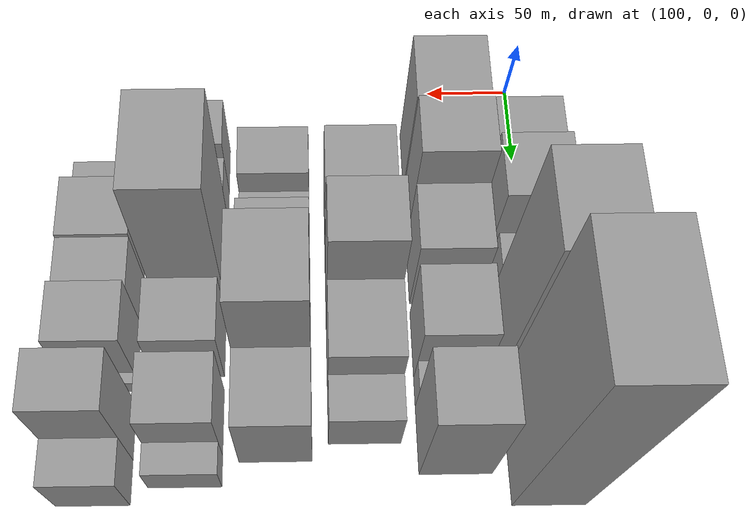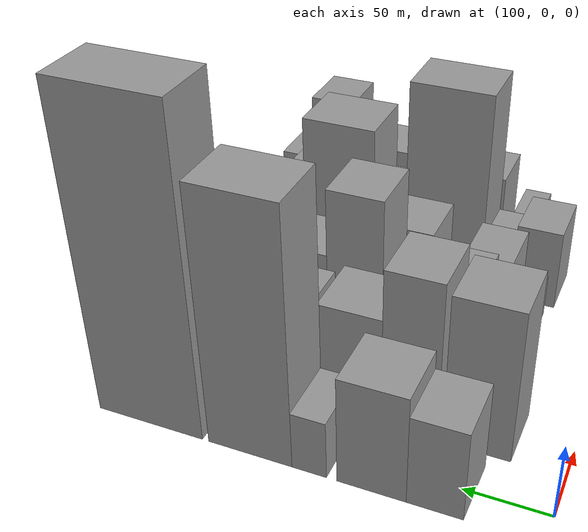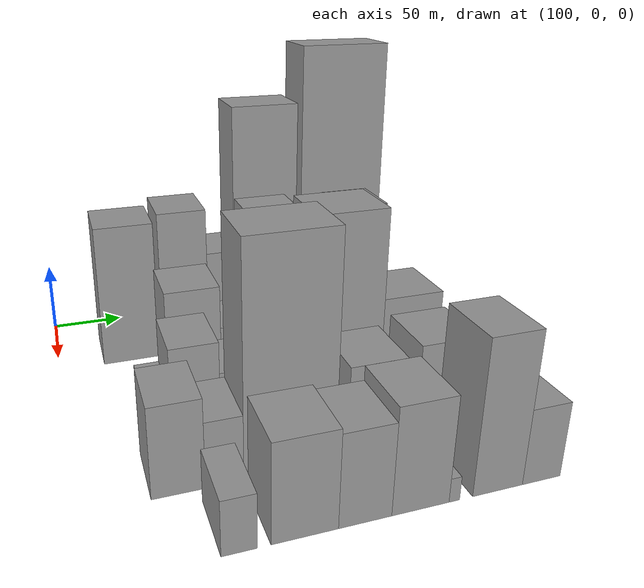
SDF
<sdf version="1.6">
 <world name="default">
  <model name="building_22">
   <static>1</static>
   <pose>100.0000 58.4036 0 0.000000 0.000000 0.000000</pose>
   <link name="link">
    <pose>0 0 30.00 0 0 0</pose>
    <collision name="collision"><geometry><box><size>40.0000 31.4197 60.0000</size></box></geometry></collision>
    <visual name="visual">
     <cast_shadows>0</cast_shadows>
     <geometry><box><size>40.0000 31.4197 60.0000</size></box></geometry>
     <material>
      <script>
       <uri>model://grey_wall/materials/scripts</uri>
       <uri>model://grey_wall/materials/textures</uri>
       <name>vrc/grey_wall</name>
      </script>
     </material>
    </visual>
   </link>
  </model>
  <model name="building_23">
   <static>1</static>
   <pose>100.0000 93.8750 0 0.000000 0.000000 0.000000</pose>
   <link name="link">
    <pose>0 0 36.00 0 0 0</pose>
    <collision name="collision"><geometry><box><size>40.0000 39.5232 72.0000</size></box></geometry></collision>
    <visual name="visual">
     <cast_shadows>0</cast_shadows>
     <geometry><box><size>40.0000 39.5232 72.0000</size></box></geometry>
     <material>
      <script>
       <uri>model://grey_wall/materials/scripts</uri>
       <uri>model://grey_wall/materials/textures</uri>
       <name>vrc/grey_wall</name>
      </script>
     </material>
    </visual>
   </link>
  </model>
  <model name="building_24">
   <static>1</static>
   <pose>100.0000 129.8729 0 0.000000 0.000000 0.000000</pose>
   <link name="link">
    <pose>0 0 19.50 0 0 0</pose>
    <collision name="collision"><geometry><box><size>40.0000 20.4726 39.0000</size></box></geometry></collision>
    <visual name="visual">
     <cast_shadows>0</cast_shadows>
     <geometry><box><size>40.0000 20.4726 39.0000</size></box></geometry>
     <material>
      <script>
       <uri>model://grey_wall/materials/scripts</uri>
       <uri>model://grey_wall/materials/textures</uri>
       <name>vrc/grey_wall</name>
      </script>
     </material>
    </visual>
   </link>
  </model>
  <model name="building_25">
   <static>1</static>
   <pose>100.0000 165.9159 0 0.000000 0.000000 0.000000</pose>
   <link name="link">
    <pose>0 0 84.00 0 0 0</pose>
    <collision name="collision"><geometry><box><size>40.0000 51.6133 168.0000</size></box></geometry></collision>
    <visual name="visual">
     <cast_shadows>0</cast_shadows>
     <geometry><box><size>40.0000 51.6133 168.0000</size></box></geometry>
     <material>
      <script>
       <uri>model://grey_wall/materials/scripts</uri>
       <uri>model://grey_wall/materials/textures</uri>
       <name>vrc/grey_wall</name>
      </script>
     </material>
    </visual>
   </link>
  </model>
  <model name="building_26">
   <static>1</static>
   <pose>100.0000 229.7220 0 0.000000 0.000000 0.000000</pose>
   <link name="link">
    <pose>0 0 105.00 0 0 0</pose>
    <collision name="collision"><geometry><box><size>40.0000 67.9990 210.0000</size></box></geometry></collision>
    <visual name="visual">
     <cast_shadows>0</cast_shadows>
     <geometry><box><size>40.0000 67.9990 210.0000</size></box></geometry>
     <material>
      <script>
       <uri>model://grey_wall/materials/scripts</uri>
       <uri>model://grey_wall/materials/textures</uri>
       <name>vrc/grey_wall</name>
      </script>
     </material>
    </visual>
   </link>
  </model>
  <model name="building_67">
   <static>1</static>
   <pose>149.0000 50.6303 0 0.000000 0.000000 0.000000</pose>
   <link name="link">
    <pose>0 0 51.00 0 0 0</pose>
    <collision name="collision"><geometry><box><size>40.0000 39.5652 102.0000</size></box></geometry></collision>
    <visual name="visual">
     <cast_shadows>0</cast_shadows>
     <geometry><box><size>40.0000 39.5652 102.0000</size></box></geometry>
     <material>
      <script>
       <uri>model://grey_wall/materials/scripts</uri>
       <uri>model://grey_wall/materials/textures</uri>
       <name>vrc/grey_wall</name>
      </script>
     </material>
    </visual>
   </link>
  </model>
  <model name="building_68">
   <static>1</static>
   <pose>149.0000 90.3499 0 0.000000 0.000000 0.000000</pose>
   <link name="link">
    <pose>0 0 54.00 0 0 0</pose>
    <collision name="collision"><geometry><box><size>40.0000 33.8740 108.0000</size></box></geometry></collision>
    <visual name="visual">
     <cast_shadows>0</cast_shadows>
     <geometry><box><size>40.0000 33.8740 108.0000</size></box></geometry>
     <material>
      <script>
       <uri>model://grey_wall/materials/scripts</uri>
       <uri>model://grey_wall/materials/textures</uri>
       <name>vrc/grey_wall</name>
      </script>
     </material>
    </visual>
   </link>
  </model>
  <model name="building_69">
   <static>1</static>
   <pose>149.0000 126.5939 0 0.000000 0.000000 0.000000</pose>
   <link name="link">
    <pose>0 0 37.50 0 0 0</pose>
    <collision name="collision"><geometry><box><size>40.0000 38.6140 75.0000</size></box></geometry></collision>
    <visual name="visual">
     <cast_shadows>0</cast_shadows>
     <geometry><box><size>40.0000 38.6140 75.0000</size></box></geometry>
     <material>
      <script>
       <uri>model://grey_wall/materials/scripts</uri>
       <uri>model://grey_wall/materials/textures</uri>
       <name>vrc/grey_wall</name>
      </script>
     </material>
    </visual>
   </link>
  </model>
  <model name="building_70">
   <static>1</static>
   <pose>149.0000 171.7424 0 0.000000 0.000000 0.000000</pose>
   <link name="link">
    <pose>0 0 34.50 0 0 0</pose>
    <collision name="collision"><geometry><box><size>40.0000 39.6831 69.0000</size></box></geometry></collision>
    <visual name="visual">
     <cast_shadows>0</cast_shadows>
     <geometry><box><size>40.0000 39.6831 69.0000</size></box></geometry>
     <material>
      <script>
       <uri>model://grey_wall/materials/scripts</uri>
       <uri>model://grey_wall/materials/textures</uri>
       <name>vrc/grey_wall</name>
      </script>
     </material>
    </visual>
   </link>
  </model>
  <model name="building_71">
   <static>1</static>
   <pose>149.0000 200.0112 0 0.000000 0.000000 0.000000</pose>
   <link name="link">
    <pose>0 0 15.00 0 0 0</pose>
    <collision name="collision"><geometry><box><size>40.0000 16.8546 30.0000</size></box></geometry></collision>
    <visual name="visual">
     <cast_shadows>0</cast_shadows>
     <geometry><box><size>40.0000 16.8546 30.0000</size></box></geometry>
     <material>
      <script>
       <uri>model://grey_wall/materials/scripts</uri>
       <uri>model://grey_wall/materials/textures</uri>
       <name>vrc/grey_wall</name>
      </script>
     </material>
    </visual>
   </link>
  </model>
  <model name="building_72">
   <static>1</static>
   <pose>149.0000 227.3875 0 0.000000 0.000000 0.000000</pose>
   <link name="link">
    <pose>0 0 49.50 0 0 0</pose>
    <collision name="collision"><geometry><box><size>40.0000 37.8979 99.0000</size></box></geometry></collision>
    <visual name="visual">
     <cast_shadows>0</cast_shadows>
     <geometry><box><size>40.0000 37.8979 99.0000</size></box></geometry>
     <material>
      <script>
       <uri>model://grey_wall/materials/scripts</uri>
       <uri>model://grey_wall/materials/textures</uri>
       <name>vrc/grey_wall</name>
      </script>
     </material>
    </visual>
   </link>
  </model>
  <model name="building_110">
   <static>1</static>
   <pose>198.0000 86.2267 0 0.000000 0.000000 0.000000</pose>
   <link name="link">
    <pose>0 0 36.00 0 0 0</pose>
    <collision name="collision"><geometry><box><size>40.0000 36.2347 72.0000</size></box></geometry></collision>
    <visual name="visual">
     <cast_shadows>0</cast_shadows>
     <geometry><box><size>40.0000 36.2347 72.0000</size></box></geometry>
     <material>
      <script>
       <uri>model://grey_wall/materials/scripts</uri>
       <uri>model://grey_wall/materials/textures</uri>
       <name>vrc/grey_wall</name>
      </script>
     </material>
    </visual>
   </link>
  </model>
  <model name="building_111">
   <static>1</static>
   <pose>198.0000 115.0011 0 0.000000 0.000000 0.000000</pose>
   <link name="link">
    <pose>0 0 21.00 0 0 0</pose>
    <collision name="collision"><geometry><box><size>40.0000 21.3140 42.0000</size></box></geometry></collision>
    <visual name="visual">
     <cast_shadows>0</cast_shadows>
     <geometry><box><size>40.0000 21.3140 42.0000</size></box></geometry>
     <material>
      <script>
       <uri>model://grey_wall/materials/scripts</uri>
       <uri>model://grey_wall/materials/textures</uri>
       <name>vrc/grey_wall</name>
      </script>
     </material>
    </visual>
   </link>
  </model>
  <model name="building_112">
   <static>1</static>
   <pose>198.0000 143.4820 0 0.000000 0.000000 0.000000</pose>
   <link name="link">
    <pose>0 0 58.50 0 0 0</pose>
    <collision name="collision"><geometry><box><size>40.0000 35.6478 117.0000</size></box></geometry></collision>
    <visual name="visual">
     <cast_shadows>0</cast_shadows>
     <geometry><box><size>40.0000 35.6478 117.0000</size></box></geometry>
     <material>
      <script>
       <uri>model://grey_wall/materials/scripts</uri>
       <uri>model://grey_wall/materials/textures</uri>
       <name>vrc/grey_wall</name>
      </script>
     </material>
    </visual>
   </link>
  </model>
  <model name="building_113">
   <static>1</static>
   <pose>198.0000 182.4246 0 0.000000 0.000000 0.000000</pose>
   <link name="link">
    <pose>0 0 36.00 0 0 0</pose>
    <collision name="collision"><geometry><box><size>40.0000 42.2373 72.0000</size></box></geometry></collision>
    <visual name="visual">
     <cast_shadows>0</cast_shadows>
     <geometry><box><size>40.0000 42.2373 72.0000</size></box></geometry>
     <material>
      <script>
       <uri>model://grey_wall/materials/scripts</uri>
       <uri>model://grey_wall/materials/textures</uri>
       <name>vrc/grey_wall</name>
      </script>
     </material>
    </visual>
   </link>
  </model>
  <model name="building_114">
   <static>1</static>
   <pose>198.0000 216.1688 0 0.000000 0.000000 0.000000</pose>
   <link name="link">
    <pose>0 0 22.50 0 0 0</pose>
    <collision name="collision"><geometry><box><size>40.0000 25.2511 45.0000</size></box></geometry></collision>
    <visual name="visual">
     <cast_shadows>0</cast_shadows>
     <geometry><box><size>40.0000 25.2511 45.0000</size></box></geometry>
     <material>
      <script>
       <uri>model://grey_wall/materials/scripts</uri>
       <uri>model://grey_wall/materials/textures</uri>
       <name>vrc/grey_wall</name>
      </script>
     </material>
    </visual>
   </link>
  </model>
  <model name="building_156">
   <static>1</static>
   <pose>247.0000 53.3687 0 0.000000 0.000000 0.000000</pose>
   <link name="link">
    <pose>0 0 15.00 0 0 0</pose>
    <collision name="collision"><geometry><box><size>40.0000 15.6656 30.0000</size></box></geometry></collision>
    <visual name="visual">
     <cast_shadows>0</cast_shadows>
     <geometry><box><size>40.0000 15.6656 30.0000</size></box></geometry>
     <material>
      <script>
       <uri>model://grey_wall/materials/scripts</uri>
       <uri>model://grey_wall/materials/textures</uri>
       <name>vrc/grey_wall</name>
      </script>
     </material>
    </visual>
   </link>
  </model>
  <model name="building_157">
   <static>1</static>
   <pose>247.0000 76.2522 0 0.000000 0.000000 0.000000</pose>
   <link name="link">
    <pose>0 0 30.00 0 0 0</pose>
    <collision name="collision"><geometry><box><size>40.0000 30.1015 60.0000</size></box></geometry></collision>
    <visual name="visual">
     <cast_shadows>0</cast_shadows>
     <geometry><box><size>40.0000 30.1015 60.0000</size></box></geometry>
     <material>
      <script>
       <uri>model://grey_wall/materials/scripts</uri>
       <uri>model://grey_wall/materials/textures</uri>
       <name>vrc/grey_wall</name>
      </script>
     </material>
    </visual>
   </link>
  </model>
  <model name="building_158">
   <static>1</static>
   <pose>247.0000 101.3006 0 0.000000 0.000000 0.000000</pose>
   <link name="link">
    <pose>0 0 19.50 0 0 0</pose>
    <collision name="collision"><geometry><box><size>40.0000 19.9952 39.0000</size></box></geometry></collision>
    <visual name="visual">
     <cast_shadows>0</cast_shadows>
     <geometry><box><size>40.0000 19.9952 39.0000</size></box></geometry>
     <material>
      <script>
       <uri>model://grey_wall/materials/scripts</uri>
       <uri>model://grey_wall/materials/textures</uri>
       <name>vrc/grey_wall</name>
      </script>
     </material>
    </visual>
   </link>
  </model>
  <model name="building_159">
   <static>1</static>
   <pose>247.0000 131.0246 0 0.000000 0.000000 0.000000</pose>
   <link name="link">
    <pose>0 0 34.50 0 0 0</pose>
    <collision name="collision"><geometry><box><size>40.0000 39.4528 69.0000</size></box></geometry></collision>
    <visual name="visual">
     <cast_shadows>0</cast_shadows>
     <geometry><box><size>40.0000 39.4528 69.0000</size></box></geometry>
     <material>
      <script>
       <uri>model://grey_wall/materials/scripts</uri>
       <uri>model://grey_wall/materials/textures</uri>
       <name>vrc/grey_wall</name>
      </script>
     </material>
    </visual>
   </link>
  </model>
  <model name="building_160">
   <static>1</static>
   <pose>247.0000 174.2249 0 0.000000 0.000000 0.000000</pose>
   <link name="link">
    <pose>0 0 66.00 0 0 0</pose>
    <collision name="collision"><geometry><box><size>40.0000 46.9478 132.0000</size></box></geometry></collision>
    <visual name="visual">
     <cast_shadows>0</cast_shadows>
     <geometry><box><size>40.0000 46.9478 132.0000</size></box></geometry>
     <material>
      <script>
       <uri>model://grey_wall/materials/scripts</uri>
       <uri>model://grey_wall/materials/textures</uri>
       <name>vrc/grey_wall</name>
      </script>
     </material>
    </visual>
   </link>
  </model>
  <model name="building_161">
   <static>1</static>
   <pose>247.0000 217.9643 0 0.000000 0.000000 0.000000</pose>
   <link name="link">
    <pose>0 0 36.00 0 0 0</pose>
    <collision name="collision"><geometry><box><size>40.0000 40.5310 72.0000</size></box></geometry></collision>
    <visual name="visual">
     <cast_shadows>0</cast_shadows>
     <geometry><box><size>40.0000 40.5310 72.0000</size></box></geometry>
     <material>
      <script>
       <uri>model://grey_wall/materials/scripts</uri>
       <uri>model://grey_wall/materials/textures</uri>
       <name>vrc/grey_wall</name>
      </script>
     </material>
    </visual>
   </link>
  </model>
  <model name="building_205">
   <static>1</static>
   <pose>296.0000 55.5657 0 0.000000 0.000000 0.000000</pose>
   <link name="link">
    <pose>0 0 28.50 0 0 0</pose>
    <collision name="collision"><geometry><box><size>40.0000 29.5504 57.0000</size></box></geometry></collision>
    <visual name="visual">
     <cast_shadows>0</cast_shadows>
     <geometry><box><size>40.0000 29.5504 57.0000</size></box></geometry>
     <material>
      <script>
       <uri>model://grey_wall/materials/scripts</uri>
       <uri>model://grey_wall/materials/textures</uri>
       <name>vrc/grey_wall</name>
      </script>
     </material>
    </visual>
   </link>
  </model>
  <model name="building_206">
   <static>1</static>
   <pose>296.0000 81.1973 0 0.000000 0.000000 0.000000</pose>
   <link name="link">
    <pose>0 0 21.00 0 0 0</pose>
    <collision name="collision"><geometry><box><size>40.0000 21.7128 42.0000</size></box></geometry></collision>
    <visual name="visual">
     <cast_shadows>0</cast_shadows>
     <geometry><box><size>40.0000 21.7128 42.0000</size></box></geometry>
     <material>
      <script>
       <uri>model://grey_wall/materials/scripts</uri>
       <uri>model://grey_wall/materials/textures</uri>
       <name>vrc/grey_wall</name>
      </script>
     </material>
    </visual>
   </link>
  </model>
  <model name="building_207">
   <static>1</static>
   <pose>296.0000 119.3716 0 0.000000 0.000000 0.000000</pose>
   <link name="link">
    <pose>0 0 72.00 0 0 0</pose>
    <collision name="collision"><geometry><box><size>40.0000 54.6359 144.0000</size></box></geometry></collision>
    <visual name="visual">
     <cast_shadows>0</cast_shadows>
     <geometry><box><size>40.0000 54.6359 144.0000</size></box></geometry>
     <material>
      <script>
       <uri>model://grey_wall/materials/scripts</uri>
       <uri>model://grey_wall/materials/textures</uri>
       <name>vrc/grey_wall</name>
      </script>
     </material>
    </visual>
   </link>
  </model>
  <model name="building_208">
   <static>1</static>
   <pose>296.0000 171.4354 0 0.000000 0.000000 0.000000</pose>
   <link name="link">
    <pose>0 0 30.00 0 0 0</pose>
    <collision name="collision"><geometry><box><size>40.0000 35.4918 60.0000</size></box></geometry></collision>
    <visual name="visual">
     <cast_shadows>0</cast_shadows>
     <geometry><box><size>40.0000 35.4918 60.0000</size></box></geometry>
     <material>
      <script>
       <uri>model://grey_wall/materials/scripts</uri>
       <uri>model://grey_wall/materials/textures</uri>
       <name>vrc/grey_wall</name>
      </script>
     </material>
    </visual>
   </link>
  </model>
  <model name="building_209">
   <static>1</static>
   <pose>296.0000 215.7584 0 0.000000 0.000000 0.000000</pose>
   <link name="link">
    <pose>0 0 33.00 0 0 0</pose>
    <collision name="collision"><geometry><box><size>40.0000 37.1543 66.0000</size></box></geometry></collision>
    <visual name="visual">
     <cast_shadows>0</cast_shadows>
     <geometry><box><size>40.0000 37.1543 66.0000</size></box></geometry>
     <material>
      <script>
       <uri>model://grey_wall/materials/scripts</uri>
       <uri>model://grey_wall/materials/textures</uri>
       <name>vrc/grey_wall</name>
      </script>
     </material>
    </visual>
   </link>
  </model>
  <model name="building_210">
   <static>1</static>
   <pose>296.0000 242.9246 0 0.000000 0.000000 0.000000</pose>
   <link name="link">
    <pose>0 0 15.00 0 0 0</pose>
    <collision name="collision"><geometry><box><size>40.0000 17.1780 30.0000</size></box></geometry></collision>
    <visual name="visual">
     <cast_shadows>0</cast_shadows>
     <geometry><box><size>40.0000 17.1780 30.0000</size></box></geometry>
     <material>
      <script>
       <uri>model://grey_wall/materials/scripts</uri>
       <uri>model://grey_wall/materials/textures</uri>
       <name>vrc/grey_wall</name>
      </script>
     </material>
    </visual>
   </link>
  </model>
  <model name="building_258">
   <static>1</static>
   <pose>345.0000 75.7708 0 0.000000 0.000000 0.000000</pose>
   <link name="link">
    <pose>0 0 16.50 0 0 0</pose>
    <collision name="collision"><geometry><box><size>40.0000 18.2970 33.0000</size></box></geometry></collision>
    <visual name="visual">
     <cast_shadows>0</cast_shadows>
     <geometry><box><size>40.0000 18.2970 33.0000</size></box></geometry>
     <material>
      <script>
       <uri>model://grey_wall/materials/scripts</uri>
       <uri>model://grey_wall/materials/textures</uri>
       <name>vrc/grey_wall</name>
      </script>
     </material>
    </visual>
   </link>
  </model>
  <model name="building_259">
   <static>1</static>
   <pose>345.0000 109.8109 0 0.000000 0.000000 0.000000</pose>
   <link name="link">
    <pose>0 0 30.00 0 0 0</pose>
    <collision name="collision"><geometry><box><size>40.0000 35.7831 60.0000</size></box></geometry></collision>
    <visual name="visual">
     <cast_shadows>0</cast_shadows>
     <geometry><box><size>40.0000 35.7831 60.0000</size></box></geometry>
     <material>
      <script>
       <uri>model://grey_wall/materials/scripts</uri>
       <uri>model://grey_wall/materials/textures</uri>
       <name>vrc/grey_wall</name>
      </script>
     </material>
    </visual>
   </link>
  </model>
  <model name="building_260">
   <static>1</static>
   <pose>345.0000 142.5376 0 0.000000 0.000000 0.000000</pose>
   <link name="link">
    <pose>0 0 28.50 0 0 0</pose>
    <collision name="collision"><geometry><box><size>40.0000 29.6703 57.0000</size></box></geometry></collision>
    <visual name="visual">
     <cast_shadows>0</cast_shadows>
     <geometry><box><size>40.0000 29.6703 57.0000</size></box></geometry>
     <material>
      <script>
       <uri>model://grey_wall/materials/scripts</uri>
       <uri>model://grey_wall/materials/textures</uri>
       <name>vrc/grey_wall</name>
      </script>
     </material>
    </visual>
   </link>
  </model>
  <model name="building_261">
   <static>1</static>
   <pose>345.0000 174.0992 0 0.000000 0.000000 0.000000</pose>
   <link name="link">
    <pose>0 0 33.00 0 0 0</pose>
    <collision name="collision"><geometry><box><size>40.0000 33.4529 66.0000</size></box></geometry></collision>
    <visual name="visual">
     <cast_shadows>0</cast_shadows>
     <geometry><box><size>40.0000 33.4529 66.0000</size></box></geometry>
     <material>
      <script>
       <uri>model://grey_wall/materials/scripts</uri>
       <uri>model://grey_wall/materials/textures</uri>
       <name>vrc/grey_wall</name>
      </script>
     </material>
    </visual>
   </link>
  </model>
  <model name="building_262">
   <static>1</static>
   <pose>345.0000 193.9983 0 0.000000 0.000000 0.000000</pose>
   <link name="link">
    <pose>0 0 7.50 0 0 0</pose>
    <collision name="collision"><geometry><box><size>40.0000 6.3452 15.0000</size></box></geometry></collision>
    <visual name="visual">
     <cast_shadows>0</cast_shadows>
     <geometry><box><size>40.0000 6.3452 15.0000</size></box></geometry>
     <material>
      <script>
       <uri>model://grey_wall/materials/scripts</uri>
       <uri>model://grey_wall/materials/textures</uri>
       <name>vrc/grey_wall</name>
      </script>
     </material>
    </visual>
   </link>
  </model>
  <model name="building_263">
   <static>1</static>
   <pose>345.0000 220.7179 0 0.000000 0.000000 0.000000</pose>
   <link name="link">
    <pose>0 0 48.00 0 0 0</pose>
    <collision name="collision"><geometry><box><size>40.0000 31.0940 96.0000</size></box></geometry></collision>
    <visual name="visual">
     <cast_shadows>0</cast_shadows>
     <geometry><box><size>40.0000 31.0940 96.0000</size></box></geometry>
     <material>
      <script>
       <uri>model://grey_wall/materials/scripts</uri>
       <uri>model://grey_wall/materials/textures</uri>
       <name>vrc/grey_wall</name>
      </script>
     </material>
    </visual>
   </link>
  </model>
  <model name="building_264">
   <static>1</static>
   <pose>345.0000 248.5022 0 0.000000 0.000000 0.000000</pose>
   <link name="link">
    <pose>0 0 24.00 0 0 0</pose>
    <collision name="collision"><geometry><box><size>40.0000 24.4746 48.0000</size></box></geometry></collision>
    <visual name="visual">
     <cast_shadows>0</cast_shadows>
     <geometry><box><size>40.0000 24.4746 48.0000</size></box></geometry>
     <material>
      <script>
       <uri>model://grey_wall/materials/scripts</uri>
       <uri>model://grey_wall/materials/textures</uri>
       <name>vrc/grey_wall</name>
      </script>
     </material>
    </visual>
   </link>
  </model>
 </world>
</sdf>
